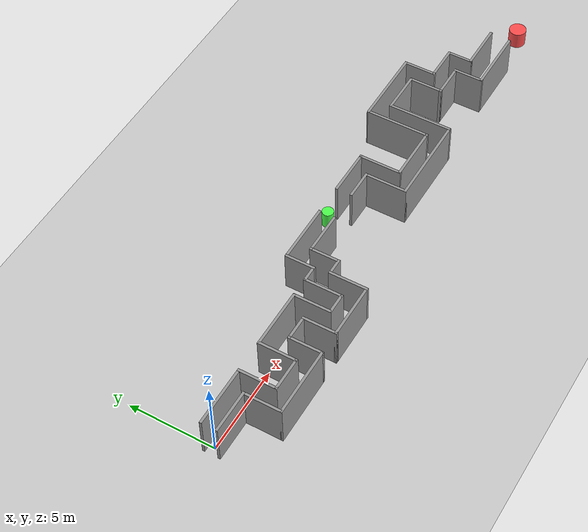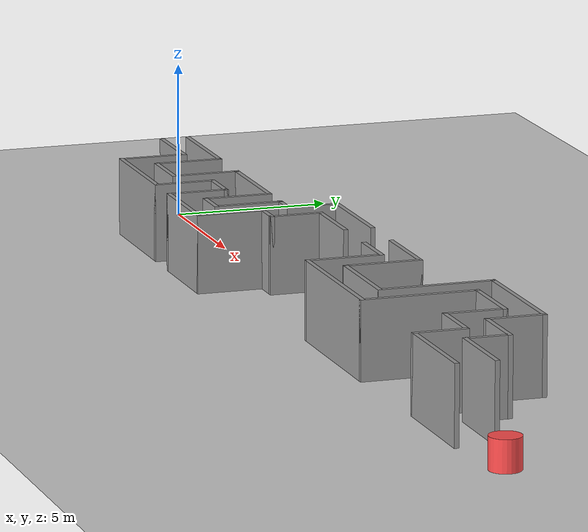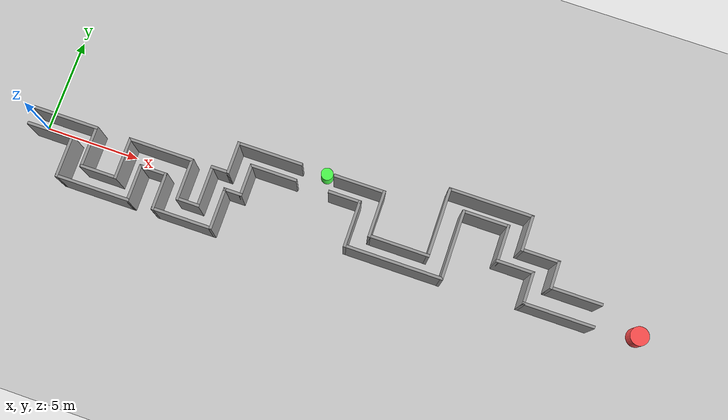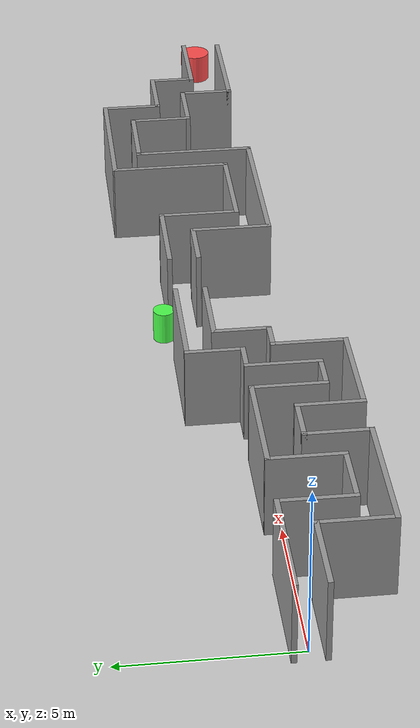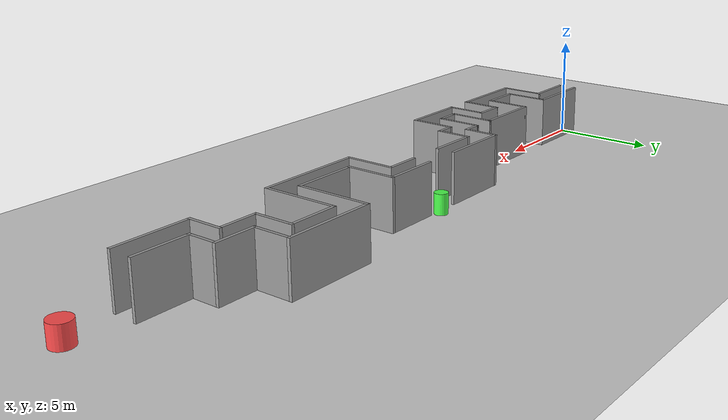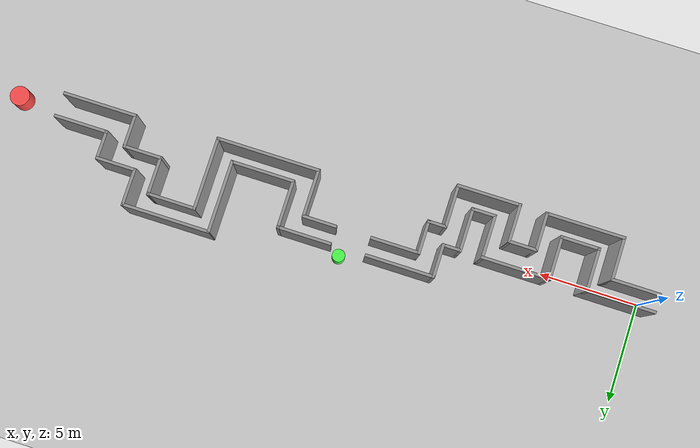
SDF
<sdf version="1.6">
 <world name="default">
  <light name="sun" type="directional">
   <pose>0 0 10 0 -0 0</pose>
   <diffuse>0.8 0.8 0.8 1</diffuse>
   <specular>0.2 0.2 0.2 1</specular>
   <attenuation>
    <range>1000</range>
    <constant>0.9</constant>
    <linear>0.01</linear>
    <quadratic>0.001</quadratic>
   </attenuation>
   <direction>-0.5 0.1 -0.9</direction>
  </light>
  <model name="ground_plane">
   <static>1</static>
   <link name="link">
    <collision name="collision">
     <geometry><plane><normal>0 0 1</normal><size>100 100</size></plane></geometry>
     <surface>
      <contact><collide_bitmask>65535</collide_bitmask></contact>
      <friction><ode><mu>100</mu><mu2>50</mu2></ode></friction>
     </surface>
    </collision>
    <visual name="visual">
     <cast_shadows>0</cast_shadows>
     <geometry><plane><normal>0 0 1</normal><size>100 100</size></plane></geometry>
     <material>
      <script><uri>file://media/materials/scripts/gazebo.material</uri><name>Gazebo/Grey</name></script>
     </material>
    </visual>
   </link>
  </model>
  <gravity>0 0 -9.8</gravity>
  <magnetic_field>6e-06 2.3e-05 -4.2e-05</magnetic_field>
  <atmosphere type="adiabatic"/>
  <physics name="default_physics" default="0" type="ode">
   <max_step_size>0.001</max_step_size>
   <real_time_factor>1</real_time_factor>
   <real_time_update_rate>1000</real_time_update_rate>
  </physics>
  <scene><ambient>0.4 0.4 0.4 1</ambient><background>0.7 0.7 0.7 1</background><shadows>1</shadows></scene>
  <audio><device>default</device></audio>
  <spherical_coordinates>
   <surface_model>EARTH_WGS84</surface_model>
   <latitude_deg>0</latitude_deg>
   <longitude_deg>0</longitude_deg>
   <elevation>0</elevation>
   <heading_deg>0</heading_deg>
  </spherical_coordinates>
  <model name="2P">
   <pose>14.8288 0.356131 0 0 -0 0</pose>
   <link name="Wall_233">
    <collision name="Wall_233_Collision">
     <geometry><box><size>3.5 0.15 2.5</size></box></geometry>
     <pose>0 0 1.25 0 -0 0</pose>
    </collision>
    <visual name="Wall_233_Visual">
     <pose>0 0 1.25 0 -0 0</pose>
     <geometry><box><size>3.5 0.15 2.5</size></box></geometry>
     <material>
      <script><uri>file://media/materials/scripts/gazebo.material</uri><name>Gazebo/Grey</name></script>
      <ambient>0 0 0 1</ambient>
     </material>
     <meta><layer>0</layer></meta>
    </visual>
    <pose>-13.457 0.073172 0 0 -0 0</pose>
   </link>
   <link name="Wall_234">
    <collision name="Wall_234_Collision">
     <geometry><box><size>2.25 0.15 2.5</size></box></geometry>
     <pose>0 0 1.25 0 -0 0</pose>
    </collision>
    <visual name="Wall_234_Visual">
     <pose>0 0 1.25 0 -0 0</pose>
     <geometry><box><size>2.25 0.15 2.5</size></box></geometry>
     <material>
      <script><uri>file://media/materials/scripts/gazebo.material</uri><name>Gazebo/Grey</name></script>
      <ambient>0 0 0 1</ambient>
     </material>
     <meta><layer>0</layer></meta>
    </visual>
    <pose>-11.782 -0.976828 0 0 -0 -1.5708</pose>
   </link>
   <link name="Wall_235">
    <collision name="Wall_235_Collision">
     <geometry><box><size>2 0.15 2.5</size></box></geometry>
     <pose>0 0 1.25 0 -0 0</pose>
    </collision>
    <visual name="Wall_235_Visual">
     <pose>0 0 1.25 0 -0 0</pose>
     <geometry><box><size>2 0.15 2.5</size></box></geometry>
     <material>
      <script><uri>file://media/materials/scripts/gazebo.material</uri><name>Gazebo/Grey</name></script>
      <ambient>0 0 0 1</ambient>
     </material>
     <meta><layer>0</layer></meta>
    </visual>
    <pose>-10.857 -2.02683 0 0 -0 0</pose>
   </link>
   <link name="Wall_236">
    <collision name="Wall_236_Collision">
     <geometry><box><size>2.25 0.15 2.5</size></box></geometry>
     <pose>0 0 1.25 0 -0 0</pose>
    </collision>
    <visual name="Wall_236_Visual">
     <pose>0 0 1.25 0 -0 0</pose>
     <geometry><box><size>2.25 0.15 2.5</size></box></geometry>
     <material>
      <script><uri>file://media/materials/scripts/gazebo.material</uri><name>Gazebo/Grey</name></script>
      <ambient>0 0 0 1</ambient>
     </material>
     <meta><layer>0</layer></meta>
    </visual>
    <pose>-9.93195 -0.976828 0 0 -0 1.5708</pose>
   </link>
   <link name="Wall_237">
    <collision name="Wall_237_Collision">
     <geometry><box><size>3.5 0.15 2.5</size></box></geometry>
     <pose>0 0 1.25 0 -0 0</pose>
    </collision>
    <visual name="Wall_237_Visual">
     <pose>0 0 1.25 0 -0 0</pose>
     <geometry><box><size>3.5 0.15 2.5</size></box></geometry>
     <material>
      <script><uri>file://media/materials/scripts/gazebo.material</uri><name>Gazebo/Grey</name></script>
      <ambient>0 0 0 1</ambient>
     </material>
     <meta><layer>0</layer></meta>
    </visual>
    <pose>-8.25695 0.073172 0 0 -0 0</pose>
   </link>
   <link name="Wall_238">
    <collision name="Wall_238_Collision">
     <geometry><box><size>2.25 0.15 2.5</size></box></geometry>
     <pose>0 0 1.25 0 -0 0</pose>
    </collision>
    <visual name="Wall_238_Visual">
     <pose>0 0 1.25 0 -0 0</pose>
     <geometry><box><size>2.25 0.15 2.5</size></box></geometry>
     <material>
      <script><uri>file://media/materials/scripts/gazebo.material</uri><name>Gazebo/Grey</name></script>
      <ambient>0 0 0 1</ambient>
     </material>
     <meta><layer>0</layer></meta>
    </visual>
    <pose>-6.58195 -0.976828 0 0 -0 -1.5708</pose>
   </link>
   <link name="Wall_239">
    <collision name="Wall_239_Collision">
     <geometry><box><size>1.25 0.15 2.5</size></box></geometry>
     <pose>0 0 1.25 0 -0 0</pose>
    </collision>
    <visual name="Wall_239_Visual">
     <pose>0 0 1.25 0 -0 0</pose>
     <geometry><box><size>1.25 0.15 2.5</size></box></geometry>
     <material>
      <script><uri>file://media/materials/scripts/gazebo.material</uri><name>Gazebo/Grey</name></script>
      <ambient>0 0 0 1</ambient>
     </material>
     <meta><layer>0</layer></meta>
    </visual>
    <pose>-6.03195 -2.02683 0 0 -0 0</pose>
   </link>
   <link name="Wall_240">
    <collision name="Wall_240_Collision">
     <geometry><box><size>2.25 0.15 2.5</size></box></geometry>
     <pose>0 0 1.25 0 -0 0</pose>
    </collision>
    <visual name="Wall_240_Visual">
     <pose>0 0 1.25 0 -0 0</pose>
     <geometry><box><size>2.25 0.15 2.5</size></box></geometry>
     <material>
      <script><uri>file://media/materials/scripts/gazebo.material</uri><name>Gazebo/Grey</name></script>
      <ambient>0 0 0 1</ambient>
     </material>
     <meta><layer>0</layer></meta>
    </visual>
    <pose>-5.48195 -0.976828 0 0 -0 1.5708</pose>
   </link>
   <link name="Wall_241">
    <collision name="Wall_241_Collision">
     <geometry><box><size>1 0.15 2.5</size></box></geometry>
     <pose>0 0 1.25 0 -0 0</pose>
    </collision>
    <visual name="Wall_241_Visual">
     <pose>0 0 1.25 0 -0 0</pose>
     <geometry><box><size>1 0.15 2.5</size></box></geometry>
     <material>
      <script><uri>file://media/materials/scripts/gazebo.material</uri><name>Gazebo/Grey</name></script>
      <ambient>0 0 0 1</ambient>
     </material>
     <meta><layer>0</layer></meta>
    </visual>
    <pose>-5.05695 0.073172 0 0 -0 0</pose>
   </link>
   <link name="Wall_242">
    <collision name="Wall_242_Collision">
     <geometry><box><size>1.75 0.15 2.5</size></box></geometry>
     <pose>0 0 1.25 0 -0 0</pose>
    </collision>
    <visual name="Wall_242_Visual">
     <pose>0 0 1.25 0 -0 0</pose>
     <geometry><box><size>1.75 0.15 2.5</size></box></geometry>
     <material>
      <script><uri>file://media/materials/scripts/gazebo.material</uri><name>Gazebo/Grey</name></script>
      <ambient>0 0 0 1</ambient>
     </material>
     <meta><layer>0</layer></meta>
    </visual>
    <pose>-4.63195 0.873172 0 0 -0 1.5708</pose>
   </link>
   <link name="Wall_243">
    <collision name="Wall_243_Collision">
     <geometry><box><size>3.5 0.15 2.5</size></box></geometry>
     <pose>0 0 1.25 0 -0 0</pose>
    </collision>
    <visual name="Wall_243_Visual">
     <pose>0 0 1.25 0 -0 0</pose>
     <geometry><box><size>3.5 0.15 2.5</size></box></geometry>
     <material>
      <script><uri>file://media/materials/scripts/gazebo.material</uri><name>Gazebo/Grey</name></script>
      <ambient>0 0 0 1</ambient>
     </material>
     <meta><layer>0</layer></meta>
    </visual>
    <pose>-2.95695 1.67317 0 0 -0 0</pose>
   </link>
   <link name="Wall_246">
    <collision name="Wall_246_Collision">
     <geometry><box><size>2.5 0.15 2.5</size></box></geometry>
     <pose>0 0 1.25 0 -0 0</pose>
    </collision>
    <visual name="Wall_246_Visual">
     <pose>0 0 1.25 0 -0 0</pose>
     <geometry><box><size>2.5 0.15 2.5</size></box></geometry>
     <material>
      <script><uri>file://media/materials/scripts/gazebo.material</uri><name>Gazebo/Grey</name></script>
      <ambient>0 0 0 1</ambient>
     </material>
     <meta><layer>0</layer></meta>
    </visual>
    <pose>-13.957 -0.805791 0 0 -0 0</pose>
   </link>
   <link name="Wall_247">
    <collision name="Wall_247_Collision">
     <geometry><box><size>2.25 0.15 2.5</size></box></geometry>
     <pose>0 0 1.25 0 -0 0</pose>
    </collision>
    <visual name="Wall_247_Visual">
     <pose>0 0 1.25 0 -0 0</pose>
     <geometry><box><size>2.25 0.15 2.5</size></box></geometry>
     <material>
      <script><uri>file://media/materials/scripts/gazebo.material</uri><name>Gazebo/Grey</name></script>
      <ambient>0 0 0 1</ambient>
     </material>
     <meta><layer>0</layer></meta>
    </visual>
    <pose>-12.782 -1.85579 0 0 -0 -1.5708</pose>
   </link>
   <link name="Wall_248">
    <collision name="Wall_248_Collision">
     <geometry><box><size>4 0.15 2.5</size></box></geometry>
     <pose>0 0 1.25 0 -0 0</pose>
    </collision>
    <visual name="Wall_248_Visual">
     <pose>0 0 1.25 0 -0 0</pose>
     <geometry><box><size>4 0.15 2.5</size></box></geometry>
     <material>
      <script><uri>file://media/materials/scripts/gazebo.material</uri><name>Gazebo/Grey</name></script>
      <ambient>0 0 0 1</ambient>
     </material>
     <meta><layer>0</layer></meta>
    </visual>
    <pose>-10.857 -2.90579 0 0 -0 0</pose>
   </link>
   <link name="Wall_250">
    <collision name="Wall_250_Collision">
     <geometry><box><size>2 0.15 2.5</size></box></geometry>
     <pose>0 0 1.25 0 -0 0</pose>
    </collision>
    <visual name="Wall_250_Visual">
     <pose>0 0 1.25 0 -0 0</pose>
     <geometry><box><size>2 0.15 2.5</size></box></geometry>
     <material>
      <script><uri>file://media/materials/scripts/gazebo.material</uri><name>Gazebo/Grey</name></script>
      <ambient>0 0 0 1</ambient>
     </material>
     <meta><layer>0</layer></meta>
    </visual>
    <pose>-8.93195 -1.98079 0 0 -0 1.5708</pose>
   </link>
   <link name="Wall_251">
    <collision name="Wall_251_Collision">
     <geometry><box><size>1.5 0.15 2.5</size></box></geometry>
     <pose>0 0 1.25 0 -0 0</pose>
    </collision>
    <visual name="Wall_251_Visual">
     <pose>0 0 1.25 0 -0 0</pose>
     <geometry><box><size>1.5 0.15 2.5</size></box></geometry>
     <material>
      <script><uri>file://media/materials/scripts/gazebo.material</uri><name>Gazebo/Grey</name></script>
      <ambient>0 0 0 1</ambient>
     </material>
     <meta><layer>0</layer></meta>
    </visual>
    <pose>-8.25695 -1.05579 0 0 -0 0</pose>
   </link>
   <link name="Wall_252">
    <collision name="Wall_252_Collision">
     <geometry><box><size>2 0.15 2.5</size></box></geometry>
     <pose>0 0 1.25 0 -0 0</pose>
    </collision>
    <visual name="Wall_252_Visual">
     <pose>0 0 1.25 0 -0 0</pose>
     <geometry><box><size>2 0.15 2.5</size></box></geometry>
     <material>
      <script><uri>file://media/materials/scripts/gazebo.material</uri><name>Gazebo/Grey</name></script>
      <ambient>0 0 0 1</ambient>
     </material>
     <meta><layer>0</layer></meta>
    </visual>
    <pose>-7.58195 -1.98079 0 0 -0 -1.5708</pose>
   </link>
   <link name="Wall_253">
    <collision name="Wall_253_Collision">
     <geometry><box><size>3.25 0.15 2.5</size></box></geometry>
     <pose>0 0 1.25 0 -0 0</pose>
    </collision>
    <visual name="Wall_253_Visual">
     <pose>0 0 1.25 0 -0 0</pose>
     <geometry><box><size>3.25 0.15 2.5</size></box></geometry>
     <material>
      <script><uri>file://media/materials/scripts/gazebo.material</uri><name>Gazebo/Grey</name></script>
      <ambient>0 0 0 1</ambient>
     </material>
     <meta><layer>0</layer></meta>
    </visual>
    <pose>-6.03195 -2.90579 0 0 -0 0</pose>
   </link>
   <link name="Wall_254">
    <collision name="Wall_254_Collision">
     <geometry><box><size>2.25 0.15 2.5</size></box></geometry>
     <pose>0 0 1.25 0 -0 0</pose>
    </collision>
    <visual name="Wall_254_Visual">
     <pose>0 0 1.25 0 -0 0</pose>
     <geometry><box><size>2.25 0.15 2.5</size></box></geometry>
     <material>
      <script><uri>file://media/materials/scripts/gazebo.material</uri><name>Gazebo/Grey</name></script>
      <ambient>0 0 0 1</ambient>
     </material>
     <meta><layer>0</layer></meta>
    </visual>
    <pose>-4.48195 -1.85579 0 0 -0 1.5708</pose>
   </link>
   <link name="Wall_255">
    <collision name="Wall_255_Collision">
     <geometry><box><size>1 0.15 2.5</size></box></geometry>
     <pose>0 0 1.25 0 -0 0</pose>
    </collision>
    <visual name="Wall_255_Visual">
     <pose>0 0 1.25 0 -0 0</pose>
     <geometry><box><size>1 0.15 2.5</size></box></geometry>
     <material>
      <script><uri>file://media/materials/scripts/gazebo.material</uri><name>Gazebo/Grey</name></script>
      <ambient>0 0 0 1</ambient>
     </material>
     <meta><layer>0</layer></meta>
    </visual>
    <pose>-4.05695 -0.805791 0 0 -0 0</pose>
   </link>
   <link name="Wall_256">
    <collision name="Wall_256_Collision">
     <geometry><box><size>1.75 0.15 2.5</size></box></geometry>
     <pose>0 0 1.25 0 -0 0</pose>
    </collision>
    <visual name="Wall_256_Visual">
     <pose>0 0 1.25 0 -0 0</pose>
     <geometry><box><size>1.75 0.15 2.5</size></box></geometry>
     <material>
      <script><uri>file://media/materials/scripts/gazebo.material</uri><name>Gazebo/Grey</name></script>
      <ambient>0 0 0 1</ambient>
     </material>
     <meta><layer>0</layer></meta>
    </visual>
    <pose>-3.63195 -0.005791 0 0 -0 1.5708</pose>
   </link>
   <link name="Wall_257">
    <collision name="Wall_257_Collision">
     <geometry><box><size>2.5 0.15 2.5</size></box></geometry>
     <pose>0 0 1.25 0 -0 0</pose>
    </collision>
    <visual name="Wall_257_Visual">
     <pose>0 0 1.25 0 -0 0</pose>
     <geometry><box><size>2.5 0.15 2.5</size></box></geometry>
     <material>
      <script><uri>file://media/materials/scripts/gazebo.material</uri><name>Gazebo/Grey</name></script>
      <ambient>0 0 0 1</ambient>
     </material>
     <meta><layer>0</layer></meta>
    </visual>
    <pose>-2.45695 0.794209 0 0 -0 0</pose>
   </link>
   <link name="Wall_261">
    <collision name="Wall_261_Collision">
     <geometry><box><size>1.75 0.15 2.5</size></box></geometry>
     <pose>0 0 1.25 0 -0 0</pose>
    </collision>
    <visual name="Wall_261_Visual">
     <pose>0 0 1.25 0 -0 0</pose>
     <geometry><box><size>1.75 0.15 2.5</size></box></geometry>
     <material>
      <script><uri>file://media/materials/scripts/gazebo.material</uri><name>Gazebo/Grey</name></script>
      <ambient>0 0 0 1</ambient>
     </material>
     <meta><layer>0</layer></meta>
    </visual>
    <pose>1.36805 0.794209 0 0 -0 0</pose>
   </link>
   <link name="Wall_262">
    <collision name="Wall_262_Collision">
     <geometry><box><size>2.5 0.15 2.5</size></box></geometry>
     <pose>0 0 1.25 0 -0 0</pose>
    </collision>
    <visual name="Wall_262_Visual">
     <pose>0 0 1.25 0 -0 0</pose>
     <geometry><box><size>2.5 0.15 2.5</size></box></geometry>
     <material>
      <script><uri>file://media/materials/scripts/gazebo.material</uri><name>Gazebo/Grey</name></script>
      <ambient>0 0 0 1</ambient>
     </material>
     <meta><layer>0</layer></meta>
    </visual>
    <pose>2.16805 -0.380791 0 0 -0 -1.5708</pose>
   </link>
   <link name="Wall_263">
    <collision name="Wall_263_Collision">
     <geometry><box><size>5.25 0.15 2.5</size></box></geometry>
     <pose>0 0 1.25 0 -0 0</pose>
    </collision>
    <visual name="Wall_263_Visual">
     <pose>0 0 1.25 0 -0 0</pose>
     <geometry><box><size>5.25 0.15 2.5</size></box></geometry>
     <material>
      <script><uri>file://media/materials/scripts/gazebo.material</uri><name>Gazebo/Grey</name></script>
      <ambient>0 0 0 1</ambient>
     </material>
     <meta><layer>0</layer></meta>
    </visual>
    <pose>4.71805 -1.55579 0 0 -0 0</pose>
   </link>
   <link name="Wall_264">
    <collision name="Wall_264_Collision">
     <geometry><box><size>3.75 0.15 2.5</size></box></geometry>
     <pose>0 0 1.25 0 -0 0</pose>
    </collision>
    <visual name="Wall_264_Visual">
     <pose>0 0 1.25 0 -0 0</pose>
     <geometry><box><size>3.75 0.15 2.5</size></box></geometry>
     <material>
      <script><uri>file://media/materials/scripts/gazebo.material</uri><name>Gazebo/Grey</name></script>
      <ambient>0 0 0 1</ambient>
     </material>
     <meta><layer>0</layer></meta>
    </visual>
    <pose>7.26805 0.244209 0 0 -0 1.5708</pose>
   </link>
   <link name="Wall_265">
    <collision name="Wall_265_Collision">
     <geometry><box><size>2.5 0.15 2.5</size></box></geometry>
     <pose>0 0 1.25 0 -0 0</pose>
    </collision>
    <visual name="Wall_265_Visual">
     <pose>0 0 1.25 0 -0 0</pose>
     <geometry><box><size>2.5 0.15 2.5</size></box></geometry>
     <material>
      <script><uri>file://media/materials/scripts/gazebo.material</uri><name>Gazebo/Grey</name></script>
      <ambient>0 0 0 1</ambient>
     </material>
     <meta><layer>0</layer></meta>
    </visual>
    <pose>8.44305 2.04421 0 0 -0 0</pose>
   </link>
   <link name="Wall_266">
    <collision name="Wall_266_Collision">
     <geometry><box><size>2 0.15 2.5</size></box></geometry>
     <pose>0 0 1.25 0 -0 0</pose>
    </collision>
    <visual name="Wall_266_Visual">
     <pose>0 0 1.25 0 -0 0</pose>
     <geometry><box><size>2 0.15 2.5</size></box></geometry>
     <material>
      <script><uri>file://media/materials/scripts/gazebo.material</uri><name>Gazebo/Grey</name></script>
      <ambient>0 0 0 1</ambient>
     </material>
     <meta><layer>0</layer></meta>
    </visual>
    <pose>9.61805 1.11921 0 0 -0 -1.5708</pose>
   </link>
   <link name="Wall_267">
    <collision name="Wall_267_Collision">
     <geometry><box><size>2 0.15 2.5</size></box></geometry>
     <pose>0 0 1.25 0 -0 0</pose>
    </collision>
    <visual name="Wall_267_Visual">
     <pose>0 0 1.25 0 -0 0</pose>
     <geometry><box><size>2 0.15 2.5</size></box></geometry>
     <material>
      <script><uri>file://media/materials/scripts/gazebo.material</uri><name>Gazebo/Grey</name></script>
      <ambient>0 0 0 1</ambient>
     </material>
     <meta><layer>0</layer></meta>
    </visual>
    <pose>10.543 0.194209 0 0 -0 0</pose>
   </link>
   <link name="Wall_268">
    <collision name="Wall_268_Collision">
     <geometry><box><size>1.75 0.15 2.5</size></box></geometry>
     <pose>0 0 1.25 0 -0 0</pose>
    </collision>
    <visual name="Wall_268_Visual">
     <pose>0 0 1.25 0 -0 0</pose>
     <geometry><box><size>1.75 0.15 2.5</size></box></geometry>
     <material>
      <script><uri>file://media/materials/scripts/gazebo.material</uri><name>Gazebo/Grey</name></script>
      <ambient>0 0 0 1</ambient>
     </material>
     <meta><layer>0</layer></meta>
    </visual>
    <pose>11.468 -0.605791 0 0 -0 -1.5708</pose>
   </link>
   <link name="Wall_269">
    <collision name="Wall_269_Collision">
     <geometry><box><size>3.75 0.15 2.5</size></box></geometry>
     <pose>0 0 1.25 0 -0 0</pose>
    </collision>
    <visual name="Wall_269_Visual">
     <pose>0 0 1.25 0 -0 0</pose>
     <geometry><box><size>3.75 0.15 2.5</size></box></geometry>
     <material>
      <script><uri>file://media/materials/scripts/gazebo.material</uri><name>Gazebo/Grey</name></script>
      <ambient>0 0 0 1</ambient>
     </material>
     <meta><layer>0</layer></meta>
    </visual>
    <pose>13.268 -1.40579 0 0 -0 0</pose>
   </link>
   <link name="Wall_273">
    <collision name="Wall_273_Collision">
     <geometry><box><size>2.75 0.15 2.5</size></box></geometry>
     <pose>0 0 1.25 0 -0 0</pose>
    </collision>
    <visual name="Wall_273_Visual">
     <pose>0 0 1.25 0 -0 0</pose>
     <geometry><box><size>2.75 0.15 2.5</size></box></geometry>
     <material>
      <script><uri>file://media/materials/scripts/gazebo.material</uri><name>Gazebo/Grey</name></script>
      <ambient>0 0 0 1</ambient>
     </material>
     <meta><layer>0</layer></meta>
    </visual>
    <pose>1.86805 1.67317 0 0 -0 0</pose>
   </link>
   <link name="Wall_274">
    <collision name="Wall_274_Collision">
     <geometry><box><size>2.5 0.15 2.5</size></box></geometry>
     <pose>0 0 1.25 0 -0 0</pose>
    </collision>
    <visual name="Wall_274_Visual">
     <pose>0 0 1.25 0 -0 0</pose>
     <geometry><box><size>2.5 0.15 2.5</size></box></geometry>
     <material>
      <script><uri>file://media/materials/scripts/gazebo.material</uri><name>Gazebo/Grey</name></script>
      <ambient>0 0 0 1</ambient>
     </material>
     <meta><layer>0</layer></meta>
    </visual>
    <pose>3.16805 0.498172 0 0 -0 -1.5708</pose>
   </link>
   <link name="Wall_275">
    <collision name="Wall_275_Collision">
     <geometry><box><size>3.25 0.15 2.5</size></box></geometry>
     <pose>0 0 1.25 0 -0 0</pose>
    </collision>
    <visual name="Wall_275_Visual">
     <pose>0 0 1.25 0 -0 0</pose>
     <geometry><box><size>3.25 0.15 2.5</size></box></geometry>
     <material>
      <script><uri>file://media/materials/scripts/gazebo.material</uri><name>Gazebo/Grey</name></script>
      <ambient>0 0 0 1</ambient>
     </material>
     <meta><layer>0</layer></meta>
    </visual>
    <pose>4.71805 -0.676828 0 0 -0 0</pose>
   </link>
   <link name="Wall_276">
    <collision name="Wall_276_Collision">
     <geometry><box><size>3.6861 0.15 2.5</size></box></geometry>
     <pose>0 0 1.25 0 -0 0</pose>
    </collision>
    <visual name="Wall_276_Visual">
     <pose>0 0 1.25 0 -0 0</pose>
     <geometry><box><size>3.6861 0.15 2.5</size></box></geometry>
     <material>
      <script><uri>file://media/materials/scripts/gazebo.material</uri><name>Gazebo/Grey</name></script>
      <ambient>0 0 0 1</ambient>
     </material>
     <meta><layer>0</layer></meta>
    </visual>
    <pose>6.26805 1.09122 0 0 -0 1.5708</pose>
   </link>
   <link name="Wall_277">
    <collision name="Wall_277_Collision">
     <geometry><box><size>4.5 0.15 2.5</size></box></geometry>
     <pose>0 0 1.25 0 -0 0</pose>
    </collision>
    <visual name="Wall_277_Visual">
     <pose>0 0 1.25 0 -0 0</pose>
     <geometry><box><size>4.5 0.15 2.5</size></box></geometry>
     <material>
      <script><uri>file://media/materials/scripts/gazebo.material</uri><name>Gazebo/Grey</name></script>
      <ambient>0 0 0 1</ambient>
     </material>
     <meta><layer>0</layer></meta>
    </visual>
    <pose>8.44305 2.90579 0 0 -0 0</pose>
   </link>
   <link name="Wall_278">
    <collision name="Wall_278_Collision">
     <geometry><box><size>1.87282 0.15 2.5</size></box></geometry>
     <pose>0 0 1.25 0 -0 0</pose>
    </collision>
    <visual name="Wall_278_Visual">
     <pose>0 0 1.25 0 -0 0</pose>
     <geometry><box><size>1.87282 0.15 2.5</size></box></geometry>
     <material>
      <script><uri>file://media/materials/scripts/gazebo.material</uri><name>Gazebo/Grey</name></script>
      <ambient>0 0 0 1</ambient>
     </material>
     <meta><layer>0</layer></meta>
    </visual>
    <pose>10.618 1.99817 0 0 -0 -1.5708</pose>
   </link>
   <link name="Wall_279">
    <collision name="Wall_279_Collision">
     <geometry><box><size>2.01796 0.15 2.5</size></box></geometry>
     <pose>0 0 1.25 0 -0 0</pose>
    </collision>
    <visual name="Wall_279_Visual">
     <pose>0 0 1.25 0 -0 0</pose>
     <geometry><box><size>2.01796 0.15 2.5</size></box></geometry>
     <material>
      <script><uri>file://media/materials/scripts/gazebo.material</uri><name>Gazebo/Grey</name></script>
      <ambient>0 0 0 1</ambient>
     </material>
     <meta><layer>0</layer></meta>
    </visual>
    <pose>11.5983 1.13708 0 0 -0 0</pose>
   </link>
   <link name="Wall_284">
    <collision name="Wall_284_Collision">
     <geometry><box><size>1.5 0.15 2.5</size></box></geometry>
     <pose>0 0 1.25 0 -0 0</pose>
    </collision>
    <visual name="Wall_284_Visual">
     <pose>0 0 1.25 0 -0 0</pose>
     <geometry><box><size>1.5 0.15 2.5</size></box></geometry>
     <material>
      <script><uri>file://media/materials/scripts/gazebo.material</uri><name>Gazebo/Grey</name></script>
      <ambient>0 0 0 1</ambient>
     </material>
     <meta><layer>0</layer></meta>
    </visual>
    <pose>12.532 0.462076 0 0 -0 -1.5708</pose>
   </link>
   <link name="Wall_285">
    <collision name="Wall_285_Collision">
     <geometry><box><size>2.75 0.15 2.5</size></box></geometry>
     <pose>0 0 1.25 0 -0 0</pose>
    </collision>
    <visual name="Wall_285_Visual">
     <pose>0 0 1.25 0 -0 0</pose>
     <geometry><box><size>2.75 0.15 2.5</size></box></geometry>
     <material>
      <script><uri>file://media/materials/scripts/gazebo.material</uri><name>Gazebo/Grey</name></script>
      <ambient>0 0 0 1</ambient>
     </material>
     <meta><layer>0</layer></meta>
    </visual>
    <pose>13.832 -0.212924 0 0 -0 0</pose>
   </link>
   <static>1</static>
  </model>
  <model name="cylinder3">
   <link name="link_0">
    <inertial>
     <mass>1</mass>
     <inertia><ixx>0.145833</ixx><ixy>0</ixy><ixz>0</ixz><iyy>0.145833</iyy><iyz>0</iyz><izz>0.125</izz></inertia>
    </inertial>
    <visual name="visual">
     <geometry><cylinder><radius>0.325916</radius><length>0.999999</length></cylinder></geometry>
     <material>
      <lighting>1</lighting>
      <script><uri>file://media/materials/scripts/gazebo.material</uri><name>Gazebo/Grey</name></script>
      <ambient>0.3 1 0.3 1</ambient>
      <diffuse>0.7 0.7 0.7 1</diffuse>
      <specular>0.01 0.01 0.01 1</specular>
      <emissive>0 0 0 1</emissive>
     </material>
    </visual>
    <collision name="collision">
     <geometry><cylinder><radius>0.325916</radius><length>0.999999</length></cylinder></geometry>
     <surface>
      <friction>
       <ode><mu>1</mu><mu2>1</mu2><fdir1>0 0 0</fdir1><slip1>0</slip1><slip2>0</slip2></ode>
       <torsional>
        <coefficient>1</coefficient>
        <patch_radius>0</patch_radius>
        <surface_radius>0</surface_radius>
        <use_patch_radius>1</use_patch_radius>
        <ode><slip>0</slip></ode>
       </torsional>
      </friction>
      <bounce><restitution_coefficient>0</restitution_coefficient><threshold>1e+06</threshold></bounce>
      <contact>
       <collide_without_contact>0</collide_without_contact>
       <collide_without_contact_bitmask>1</collide_without_contact_bitmask>
       <collide_bitmask>1</collide_bitmask>
       <ode>
        <soft_cfm>0</soft_cfm>
        <soft_erp>0.2</soft_erp>
        <kp>1e+13</kp>
        <kd>1</kd>
        <max_vel>0.01</max_vel>
        <min_depth>0</min_depth>
       </ode>
       <bullet>
        <split_impulse>1</split_impulse>
        <split_impulse_penetration_threshold>-0.01</split_impulse_penetration_threshold>
        <soft_cfm>0</soft_cfm>
        <soft_erp>0.2</soft_erp>
        <kp>1e+13</kp>
        <kd>1</kd>
       </bullet>
      </contact>
     </surface>
    </collision>
   </link>
   <static>0</static>
   <pose>14.8532 2.279 0.499994 -2e-06 2e-06 0.003967</pose>
  </model>
  <model name="cylinder2">
   <link name="link_0">
    <inertial>
     <mass>1</mass>
     <inertia><ixx>0.145833</ixx><ixy>0</ixy><ixz>0</ixz><iyy>0.145833</iyy><iyz>0</iyz><izz>0.125</izz></inertia>
    </inertial>
    <visual name="visual">
     <geometry><cylinder><radius>0.499999</radius><length>0.999997</length></cylinder></geometry>
     <material>
      <lighting>1</lighting>
      <script><uri>file://media/materials/scripts/gazebo.material</uri><name>Gazebo/Grey</name></script>
      <ambient>1 0.3 0.3 1</ambient>
      <diffuse>0.7 0.7 0.7 1</diffuse>
      <specular>0.01 0.01 0.01 1</specular>
      <emissive>0 0 0 1</emissive>
     </material>
    </visual>
    <collision name="collision">
     <geometry><cylinder><radius>0.499999</radius><length>0.999997</length></cylinder></geometry>
     <surface>
      <friction>
       <ode><mu>1</mu><mu2>1</mu2><fdir1>0 0 0</fdir1><slip1>0</slip1><slip2>0</slip2></ode>
       <torsional>
        <coefficient>1</coefficient>
        <patch_radius>0</patch_radius>
        <surface_radius>0</surface_radius>
        <use_patch_radius>1</use_patch_radius>
        <ode><slip>0</slip></ode>
       </torsional>
      </friction>
      <bounce><restitution_coefficient>0</restitution_coefficient><threshold>1e+06</threshold></bounce>
      <contact>
       <collide_without_contact>0</collide_without_contact>
       <collide_without_contact_bitmask>1</collide_without_contact_bitmask>
       <collide_bitmask>1</collide_bitmask>
       <ode>
        <soft_cfm>0</soft_cfm>
        <soft_erp>0.2</soft_erp>
        <kp>1e+13</kp>
        <kd>1</kd>
        <max_vel>0.01</max_vel>
        <min_depth>0</min_depth>
       </ode>
       <bullet>
        <split_impulse>1</split_impulse>
        <split_impulse_penetration_threshold>-0.01</split_impulse_penetration_threshold>
        <soft_cfm>0</soft_cfm>
        <soft_erp>0.2</soft_erp>
        <kp>1e+13</kp>
        <kd>1</kd>
       </bullet>
      </contact>
     </surface>
    </collision>
   </link>
   <static>0</static>
   <pose>32.4965 -0.503088 0.499998 -0 -0 -0</pose>
  </model>
 </world>
</sdf>
